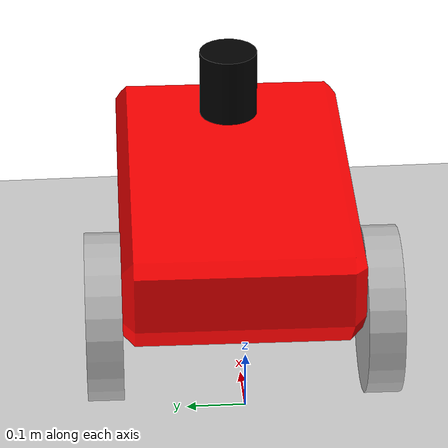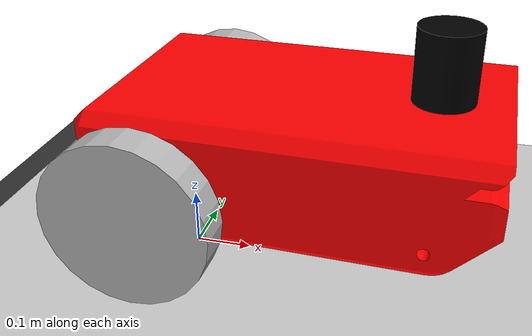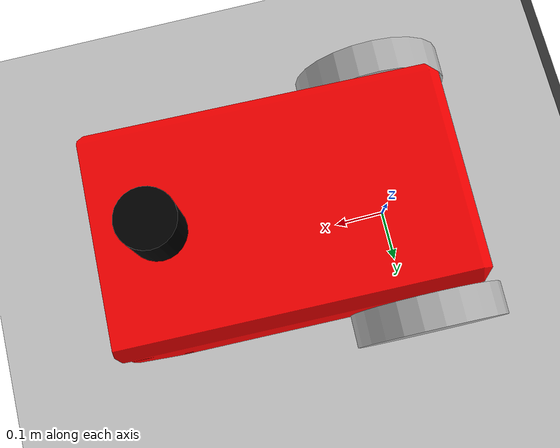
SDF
<sdf version="1.7">
 <world name="default">
  <model name="ground_plane">
   <static>1</static>
   <link name="link">
    <collision name="collision">
     <geometry><plane><normal>0 0 1</normal><size>100 100</size></plane></geometry>
     <surface><friction><ode><mu>100</mu><mu2>50</mu2></ode></friction></surface>
    </collision>
    <visual name="visual">
     <cast_shadows>0</cast_shadows>
     <geometry><plane><normal>0 0 1</normal><size>100 100</size></plane></geometry>
     <material>
      <script><uri>file://media/materials/scripts/gazebo.material</uri><name>Gazebo/Grey</name></script>
     </material>
    </visual>
   </link>
  </model>
  <model name="asphalt_plane">
   <static>1</static>
   <link name="link">
    <collision name="collision">
     <geometry><box><size>20 20 0.1</size></box></geometry>
     <surface><friction><ode><mu>100</mu><mu2>50</mu2></ode></friction></surface>
    </collision>
    <visual name="visual">
     <cast_shadows>0</cast_shadows>
     <geometry><box><size>20 20 0.1</size></box></geometry>
     <material>
      <script>
       <uri>model://asphalt_plane/materials/scripts</uri>
       <uri>model://asphalt_plane/materials/textures</uri>
       <name>vrc/asphalt</name>
      </script>
     </material>
    </visual>
   </link>
   <pose>-10.8531 -7.50842 0 0 -0 0</pose>
  </model>
  <model name="basic_mobile_bot">
   <static>0</static>
   <pose>0.21243 0.000448 0.239989 0 5.2e-05 -0.025353</pose>
   <link name="base_footprint">
    <inertial>
     <inertia><ixx>1</ixx><ixy>0</ixy><ixz>0</ixz><iyy>1</iyy><iyz>0</iyz><izz>1</izz></inertia>
     <mass>1</mass>
    </inertial>
   </link>
   <link name="base_link">
    <collision name="base_collision">
     <pose>0 0 0.1 0 -0 0</pose>
     <geometry><box><size>0.7 0.39 0.2</size></box></geometry>
    </collision>
    <visual name="base_visual">
     <pose>0 0 -0.05 1.5708 -0 -3.14159</pose>
     <geometry>
      <mesh><uri>model://basic_mobile_bot_description/meshes/robot_base.stl</uri><scale>1 1 1</scale></mesh>
     </geometry>
     <material>
      <ambient>1 0 0 1</ambient>
      <diffuse>1 0 0 1</diffuse>
      <specular>0 0 0 1</specular>
      <emissive>0 0 0 1</emissive>
     </material>
    </visual>
    <inertial>
     <inertia><ixx>1</ixx><ixy>0</ixy><ixz>0</ixz><iyy>1</iyy><iyz>0</iyz><izz>1</izz></inertia>
     <mass>1</mass>
    </inertial>
   </link>
   <link name="imu_link">
    <sensor name="bmb_imu" type="imu">
     <always_on>1</always_on>
     <update_rate>100</update_rate>
     <visualize>1</visualize>
     <imu>
      <angular_velocity>
       <x><noise type="gaussian"><mean>0</mean><stddev>0.0002</stddev></noise></x>
       <y><noise type="gaussian"><mean>0</mean><stddev>0.0002</stddev></noise></y>
       <z><noise type="gaussian"><mean>0</mean><stddev>0.0002</stddev></noise></z>
      </angular_velocity>
      <linear_acceleration>
       <x><noise type="gaussian"><mean>0</mean><stddev>0.017</stddev></noise></x>
       <y><noise type="gaussian"><mean>0</mean><stddev>0.017</stddev></noise></y>
       <z><noise type="gaussian"><mean>0</mean><stddev>0.017</stddev></noise></z>
      </linear_acceleration>
      <orientation>
       <x><noise type="gaussian"><mean>0.0</mean><stddev>2e-3</stddev></noise></x>
       <y><noise type="gaussian"><mean>0.0</mean><stddev>2e-3</stddev></noise></y>
       <z><noise type="gaussian"><mean>0.0</mean><stddev>2e-3</stddev></noise></z>
      </orientation>
     </imu>
     <plugin name="basic_mobile_bot_imu" filename="libgazebo_ros_imu_sensor.so">
      <initial_orientation_as_reference>0</initial_orientation_as_reference>
      <frame_name>imu_link</frame_name>
      <ros><namespace>/imu</namespace><remapping>~/out:=data</remapping></ros>
     </plugin>
    </sensor>
    <inertial>
     <inertia><ixx>1</ixx><ixy>0</ixy><ixz>0</ixz><iyy>1</iyy><iyz>0</iyz><izz>1</izz></inertia>
     <mass>1</mass>
    </inertial>
   </link>
   <link name="gps_link">
    <sensor name="bmb_gps" type="gps">
     <always_on>1</always_on>
     <update_rate>10</update_rate>
     <gps>
      <position_sensing>
       <horizontal><noise type="gaussian"><mean>0</mean><stddev>0.01</stddev></noise></horizontal>
       <vertical><noise type="gaussian"><mean>0</mean><stddev>1</stddev></noise></vertical>
      </position_sensing>
     </gps>
     <plugin name="basic_mobile_bot_gps" filename="libgazebo_ros_gps_sensor.so">
      <ros><remapping>~/out:=gps/fix</remapping></ros>
     </plugin>
    </sensor>
    <inertial>
     <inertia><ixx>1</ixx><ixy>0</ixy><ixz>0</ixz><iyy>1</iyy><iyz>0</iyz><izz>1</izz></inertia>
     <mass>1</mass>
    </inertial>
   </link>
   <link name="lidar_link">
    <inertial>
     <pose>0.215 0 0.13 0 -0 0</pose>
     <inertia><ixx>0.001</ixx><ixy>0</ixy><ixz>0</ixz><iyy>0.001</iyy><iyz>0</iyz><izz>0.001</izz></inertia>
     <mass>0.114</mass>
    </inertial>
    <collision name="lidar_collision">
     <pose>0.215 0 0.13 0 -0 0</pose>
     <geometry><cylinder><radius>0.0508</radius><length>0.18</length></cylinder></geometry>
    </collision>
    <visual name="lidar_visual">
     <pose>0.215 0 0.13 0 -0 0</pose>
     <geometry><cylinder><radius>0.0508</radius><length>0.18</length></cylinder></geometry>
     <material>
      <ambient>0 0 0 1</ambient>
      <diffuse>0 0 0 1</diffuse>
      <specular>0 0 0 1</specular>
      <emissive>0 0 0 1</emissive>
     </material>
    </visual>
    <sensor name="lidar" type="ray">
     <pose>0.215 0 0.215 0 -0 0</pose>
     <always_on>1</always_on>
     <visualize>1</visualize>
     <update_rate>5</update_rate>
     <ray>
      <scan>
       <horizontal>
        <samples>120</samples>
        <resolution>1</resolution>
        <min_angle>-3.14159</min_angle>
        <max_angle>3.14159</max_angle>
       </horizontal>
       <vertical><samples>1</samples><min_angle>0</min_angle><max_angle>0</max_angle></vertical>
      </scan>
      <range><min>0.3</min><max>15</max><resolution>0.015</resolution></range>
      <noise><type>gaussian</type><mean>0</mean><stddev>0.01</stddev></noise>
     </ray>
     <plugin name="scan" filename="libgazebo_ros_ray_sensor.so">
      <ros><remapping>~/out:=scan</remapping></ros>
      <output_type>sensor_msgs/LaserScan</output_type>
      <frame_name>lidar_link</frame_name>
     </plugin>
    </sensor>
   </link>
   <link name="drivewhl_l_link">
    <pose>-0.221 0.23 -0.05 3.14159 1.57079 -1.57079</pose>
    <collision name="drivewhl_l_collision">
     <geometry><cylinder><radius>0.14</radius><length>0.06</length></cylinder></geometry>
    </collision>
    <visual name="drivewhl_l_visual">
     <geometry><cylinder><radius>0.14</radius><length>0.06</length></cylinder></geometry>
    </visual>
    <inertial>
     <inertia><ixx>1</ixx><ixy>0</ixy><ixz>0</ixz><iyy>1</iyy><iyz>0</iyz><izz>1</izz></inertia>
     <mass>1</mass>
    </inertial>
   </link>
   <link name="drivewhl_r_link">
    <pose>-0.221 -0.23 -0.05 3.14159 1.57079 -1.57079</pose>
    <collision name="drivewhl_r_collision">
     <geometry><cylinder><radius>0.14</radius><length>0.06</length></cylinder></geometry>
    </collision>
    <visual name="drivewhl_r_visual">
     <geometry><cylinder><radius>0.14</radius><length>0.06</length></cylinder></geometry>
    </visual>
    <inertial>
     <inertia><ixx>1</ixx><ixy>0</ixy><ixz>0</ixz><iyy>1</iyy><iyz>0</iyz><izz>1</izz></inertia>
     <mass>1</mass>
    </inertial>
   </link>
   <link name="front_caster">
    <pose>0.217 0 -0.1 0 -0 0</pose>
    <inertial>
     <inertia><ixx>0.001</ixx><ixy>0</ixy><ixz>0</ixz><iyy>0.001</iyy><iyz>0</iyz><izz>0.001</izz></inertia>
     <mass>70</mass>
    </inertial>
    <collision name="collision">
     <geometry><sphere><radius>0.09</radius></sphere></geometry>
     <surface>
      <friction><ode><mu>0.01</mu><mu2>0.01</mu2><slip1>1</slip1><slip2>1</slip2></ode></friction>
     </surface>
    </collision>
    <visual name="front_caster_visual"><geometry><sphere><radius>0.09</radius></sphere></geometry></visual>
   </link>
   <joint name="base_joint" type="fixed"><parent>base_footprint</parent><child>base_link</child></joint>
   <joint name="drivewhl_l_joint" type="revolute">
    <parent>base_link</parent>
    <child>drivewhl_l_link</child>
    <axis>
     <xyz>0 0 1</xyz>
     <limit><lower>-1e+16</lower><upper>1e+16</upper></limit>
     <dynamics><spring_reference>0</spring_reference><spring_stiffness>0</spring_stiffness></dynamics>
    </axis>
   </joint>
   <joint name="drivewhl_r_joint" type="revolute">
    <parent>base_link</parent>
    <child>drivewhl_r_link</child>
    <axis>
     <xyz>0 0 1</xyz>
     <limit><lower>-1e+16</lower><upper>1e+16</upper></limit>
     <dynamics><spring_reference>0</spring_reference><spring_stiffness>0</spring_stiffness></dynamics>
    </axis>
   </joint>
   <joint name="caster_joint" type="fixed"><parent>base_link</parent><child>front_caster</child></joint>
   <joint name="imu_joint" type="fixed"><parent>base_link</parent><child>imu_link</child></joint>
   <joint name="gps_joint" type="fixed"><parent>base_link</parent><child>gps_link</child></joint>
   <joint name="lidar_joint" type="fixed"><parent>base_link</parent><child>lidar_link</child></joint>
   <plugin name="basic_mobile_bot_diff_drive" filename="libgazebo_ros_diff_drive.so">
    <update_rate>30</update_rate>
    <left_joint>drivewhl_l_joint</left_joint>
    <right_joint>drivewhl_r_joint</right_joint>
    <wheel_separation>0.52</wheel_separation>
    <wheel_diameter>0.28</wheel_diameter>
    <max_wheel_torque>20</max_wheel_torque>
    <max_wheel_acceleration>1.0</max_wheel_acceleration>
    <command_topic>cmd_vel</command_topic>
    <publish_odom>1</publish_odom>
    <publish_odom_tf>0</publish_odom_tf>
    <publish_wheel_tf>0</publish_wheel_tf>
    <odometry_topic>odom</odometry_topic>
    <odometry_frame>odom</odometry_frame>
    <robot_base_frame>base_footprint</robot_base_frame>
    <odometry_source>1</odometry_source>
    <ros><remapping>odom:=wheel/odometry</remapping></ros>
   </plugin>
   <plugin name="basic_mobile_bot_joint_state" filename="libgazebo_ros_joint_state_publisher.so">
    <ros><remapping>~/out:=joint_states</remapping></ros>
    <update_rate>30</update_rate>
    <joint_name>drivewhl_l_joint</joint_name>
    <joint_name>drivewhl_r_joint</joint_name>
   </plugin>
  </model>
 </world>
</sdf>
